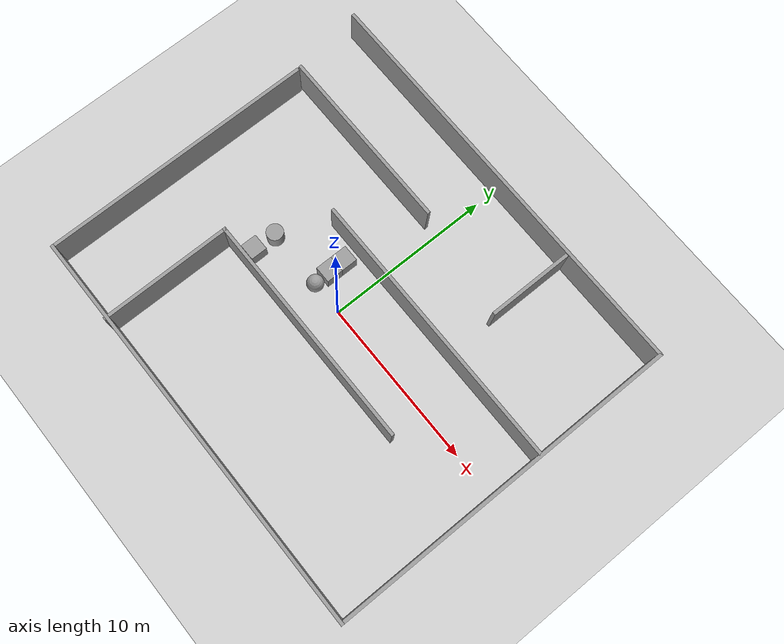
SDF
<sdf version="1.4">
 <world name="default">
  <model name="ground_plane">
   <static>1</static>
   <link name="link">
    <collision name="collision">
     <geometry><plane><normal>0 0 1</normal><size>100 100</size></plane></geometry>
     <surface><friction><ode><mu>100</mu><mu2>50</mu2></ode></friction></surface>
    </collision>
    <visual name="visual">
     <cast_shadows>0</cast_shadows>
     <geometry><plane><normal>0 0 1</normal><size>100 100</size></plane></geometry>
     <material>
      <script><uri>file://media/materials/scripts/gazebo.material</uri><name>Gazebo/Grey</name></script>
     </material>
    </visual>
    <velocity_decay><linear>0</linear><angular>0</angular></velocity_decay>
   </link>
  </model>
  <light name="sun" type="directional">
   <pose>0 0 10 0 -0 0</pose>
   <diffuse>0.8 0.8 0.8 1</diffuse>
   <specular>0.2 0.2 0.2 1</specular>
   <attenuation>
    <range>1000</range>
    <constant>0.9</constant>
    <linear>0.01</linear>
    <quadratic>0.001</quadratic>
   </attenuation>
   <direction>-0.5 0.1 -0.9</direction>
  </light>
  <model name="simpleWorld">
   <link name="Wall_1">
    <collision name="Wall_1_Collision">
     <geometry><box><size>16.7182 0.2 2.5</size></box></geometry>
     <pose>0 0 1.25 0 -0 0</pose>
    </collision>
    <visual name="Wall_1_Visual">
     <pose>0 0 1.25 0 -0 0</pose>
     <geometry><box><size>16.7182 0.2 2.5</size></box></geometry>
     <material>
      <script><uri>file://media/materials/scripts/gazebo.material</uri><name>Gazebo/Grey</name></script>
     </material>
    </visual>
    <velocity_decay><linear>0</linear><angular>0</angular></velocity_decay>
    <pose>-11.8636 -1.67251 0 0 0 -1.5708</pose>
   </link>
   <link name="Wall_10">
    <collision name="Wall_10_Collision">
     <geometry><box><size>5.17829 0.2 2.5</size></box></geometry>
     <pose>0 0 1.25 0 -0 0</pose>
    </collision>
    <visual name="Wall_10_Visual">
     <pose>0 0 1.25 0 -0 0</pose>
     <geometry><box><size>5.17829 0.2 2.5</size></box></geometry>
     <material>
      <script><uri>file://media/materials/scripts/gazebo.material</uri><name>Gazebo/Grey</name></script>
     </material>
    </visual>
    <velocity_decay><linear>0</linear><angular>0</angular></velocity_decay>
    <pose>5.66371 8.49534 0 0 0 -1.5708</pose>
   </link>
   <link name="Wall_12">
    <collision name="Wall_12_Collision">
     <geometry><box><size>7.99211 0.2 2.5</size></box></geometry>
     <pose>0 0 1.25 0 -0 0</pose>
    </collision>
    <visual name="Wall_12_Visual">
     <pose>0 0 1.25 0 -0 0</pose>
     <geometry><box><size>7.99211 0.2 2.5</size></box></geometry>
     <material>
      <script><uri>file://media/materials/scripts/gazebo.material</uri><name>Gazebo/Grey</name></script>
     </material>
    </visual>
    <velocity_decay><linear>0</linear><angular>0</angular></velocity_decay>
    <pose>-6.89025 -6.11486 0 0 -0 1.5708</pose>
   </link>
   <link name="Wall_13">
    <collision name="Wall_13_Collision">
     <geometry><box><size>14.2691 0.2 2.5</size></box></geometry>
     <pose>0 0 1.25 0 -0 0</pose>
    </collision>
    <visual name="Wall_13_Visual">
     <pose>0 0 1.25 0 -0 0</pose>
     <geometry><box><size>14.2691 0.2 2.5</size></box></geometry>
     <material>
      <script><uri>file://media/materials/scripts/gazebo.material</uri><name>Gazebo/Grey</name></script>
     </material>
    </visual>
    <velocity_decay><linear>0</linear><angular>0</angular></velocity_decay>
    <pose>0.144297 -2.21881 0 0 -0 0</pose>
   </link>
   <link name="Wall_2">
    <collision name="Wall_2_Collision">
     <geometry><box><size>24.7985 0.2 2.5</size></box></geometry>
     <pose>0 0 1.25 0 -0 0</pose>
    </collision>
    <visual name="Wall_2_Visual">
     <pose>0 0 1.25 0 -0 0</pose>
     <geometry><box><size>24.7985 0.2 2.5</size></box></geometry>
     <material>
      <script><uri>file://media/materials/scripts/gazebo.material</uri><name>Gazebo/Grey</name></script>
     </material>
    </visual>
    <velocity_decay><linear>0</linear><angular>0</angular></velocity_decay>
    <pose>0.435691 -9.93163 0 0 -0 0</pose>
   </link>
   <link name="Wall_3">
    <collision name="Wall_3_Collision">
     <geometry><box><size>21.3326 0.2 2.5</size></box></geometry>
     <pose>0 0 1.25 0 -0 0</pose>
    </collision>
    <visual name="Wall_3_Visual">
     <pose>0 0 1.25 0 -0 0</pose>
     <geometry><box><size>21.3326 0.2 2.5</size></box></geometry>
     <material>
      <script><uri>file://media/materials/scripts/gazebo.material</uri><name>Gazebo/Grey</name></script>
     </material>
    </visual>
    <velocity_decay><linear>0</linear><angular>0</angular></velocity_decay>
    <pose>12.7349 0.634654 0 0 -0 1.5708</pose>
   </link>
   <link name="Wall_4">
    <collision name="Wall_4_Collision">
     <geometry><box><size>25.4528 0.2 2.5</size></box></geometry>
     <pose>0 0 1.25 0 -0 0</pose>
    </collision>
    <visual name="Wall_4_Visual">
     <pose>0 0 1.25 0 -0 0</pose>
     <geometry><box><size>25.4528 0.2 2.5</size></box></geometry>
     <material>
      <script><uri>file://media/materials/scripts/gazebo.material</uri><name>Gazebo/Grey</name></script>
     </material>
    </visual>
    <velocity_decay><linear>0</linear><angular>0</angular></velocity_decay>
    <pose>0.108526 11.2009 0 0 -0 3.14159</pose>
   </link>
   <link name="Wall_6">
    <collision name="Wall_6_Collision">
     <geometry><box><size>11.2388 0.2 2.5</size></box></geometry>
     <pose>0 0 1.25 0 -0 0</pose>
    </collision>
    <visual name="Wall_6_Visual">
     <pose>0 0 1.25 0 -0 0</pose>
     <geometry><box><size>11.2388 0.2 2.5</size></box></geometry>
     <material>
      <script><uri>file://media/materials/scripts/gazebo.material</uri><name>Gazebo/Grey</name></script>
     </material>
    </visual>
    <velocity_decay><linear>0</linear><angular>0</angular></velocity_decay>
    <pose>-6.34913 6.87198 0 0 -0 0</pose>
   </link>
   <link name="Wall_8">
    <collision name="Wall_8_Collision">
     <geometry><box><size>16.8665 0.2 2.5</size></box></geometry>
     <pose>0 0 1.25 0 -0 0</pose>
    </collision>
    <visual name="Wall_8_Visual">
     <pose>0 0 1.25 0 -0 0</pose>
     <geometry><box><size>16.8665 0.2 2.5</size></box></geometry>
     <material>
      <script><uri>file://media/materials/scripts/gazebo.material</uri><name>Gazebo/Grey</name></script>
     </material>
    </visual>
    <velocity_decay><linear>0</linear><angular>0</angular></velocity_decay>
    <pose>4.2568 2.97593 0 0 -0 3.14159</pose>
   </link>
   <static>1</static>
  </model>
  <physics type="ode">
   <max_step_size>0.001</max_step_size>
   <real_time_factor>1</real_time_factor>
   <real_time_update_rate>1000</real_time_update_rate>
   <gravity>0 0 -9.8</gravity>
  </physics>
  <scene><ambient>0.4 0.4 0.4 1</ambient><background>0.7 0.7 0.7 1</background><shadows>1</shadows></scene>
  <spherical_coordinates>
   <surface_model>EARTH_WGS84</surface_model>
   <latitude_deg>0</latitude_deg>
   <longitude_deg>0</longitude_deg>
   <elevation>0</elevation>
   <heading_deg>0</heading_deg>
  </spherical_coordinates>
  <model name="unit_box_1">
   <pose>-2 2 0.5 -0 -0 -0</pose>
   <link name="link">
    <inertial>
     <mass>1</mass>
     <inertia><ixx>1</ixx><ixy>0</ixy><ixz>0</ixz><iyy>1</iyy><iyz>0</iyz><izz>1</izz></inertia>
    </inertial>
    <collision name="collision"><geometry><box><size>1 1 1</size></box></geometry></collision>
    <visual name="visual">
     <geometry><box><size>1 1 1</size></box></geometry>
     <material>
      <script><uri>file://media/materials/scripts/gazebo.material</uri><name>Gazebo/Grey</name></script>
     </material>
    </visual>
    <velocity_decay><linear>0</linear><angular>0</angular></velocity_decay>
   </link>
   <static>0</static>
  </model>
  <model name="unit_box_2">
   <pose>-2 0.999999 0.5 0 -0 0</pose>
   <link name="link">
    <inertial>
     <mass>1</mass>
     <inertia><ixx>1</ixx><ixy>0</ixy><ixz>0</ixz><iyy>1</iyy><iyz>0</iyz><izz>1</izz></inertia>
    </inertial>
    <collision name="collision"><geometry><box><size>1 1 1</size></box></geometry></collision>
    <visual name="visual">
     <geometry><box><size>1 1 1</size></box></geometry>
     <material>
      <script><uri>file://media/materials/scripts/gazebo.material</uri><name>Gazebo/Grey</name></script>
     </material>
    </visual>
    <velocity_decay><linear>0</linear><angular>0</angular></velocity_decay>
   </link>
   <static>0</static>
  </model>
  <model name="unit_sphere_1">
   <pose>-1.99984 -0.000606 0.5 0.001212 0.000327 -0.000408</pose>
   <link name="link">
    <inertial>
     <mass>1</mass>
     <inertia><ixx>1</ixx><ixy>0</ixy><ixz>0</ixz><iyy>1</iyy><iyz>0</iyz><izz>1</izz></inertia>
    </inertial>
    <collision name="collision"><geometry><sphere><radius>0.5</radius></sphere></geometry></collision>
    <visual name="visual">
     <geometry><sphere><radius>0.5</radius></sphere></geometry>
     <material>
      <script><uri>file://media/materials/scripts/gazebo.material</uri><name>Gazebo/Grey</name></script>
     </material>
    </visual>
    <velocity_decay><linear>0</linear><angular>0</angular></velocity_decay>
   </link>
   <static>0</static>
  </model>
  <model name="unit_box_3">
   <pose>-5.5976 -1.42833 0.5 0 -0 0</pose>
   <link name="link">
    <inertial>
     <mass>1</mass>
     <inertia><ixx>1</ixx><ixy>0</ixy><ixz>0</ixz><iyy>1</iyy><iyz>0</iyz><izz>1</izz></inertia>
    </inertial>
    <collision name="collision"><geometry><box><size>1 1 1</size></box></geometry></collision>
    <visual name="visual">
     <geometry><box><size>1 1 1</size></box></geometry>
     <material>
      <script><uri>file://media/materials/scripts/gazebo.material</uri><name>Gazebo/Grey</name></script>
     </material>
    </visual>
    <velocity_decay><linear>0</linear><angular>0</angular></velocity_decay>
   </link>
   <static>0</static>
  </model>
  <model name="unit_cylinder_1">
   <pose>-5.56177 0 0.499992 0 -0 0</pose>
   <link name="link">
    <inertial>
     <mass>1</mass>
     <inertia><ixx>1</ixx><ixy>0</ixy><ixz>0</ixz><iyy>1</iyy><iyz>0</iyz><izz>1</izz></inertia>
    </inertial>
    <collision name="collision">
     <geometry><cylinder><radius>0.5</radius><length>1</length></cylinder></geometry>
    </collision>
    <visual name="visual">
     <geometry><cylinder><radius>0.5</radius><length>1</length></cylinder></geometry>
     <material>
      <script><uri>file://media/materials/scripts/gazebo.material</uri><name>Gazebo/Grey</name></script>
     </material>
    </visual>
    <velocity_decay><linear>0</linear><angular>0</angular></velocity_decay>
   </link>
   <static>0</static>
  </model>
 </world>
</sdf>
